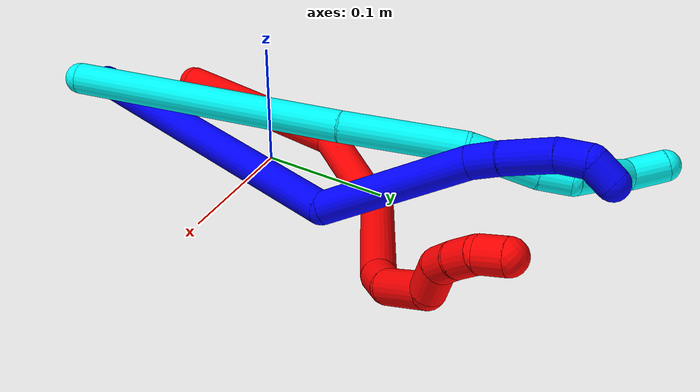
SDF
<sdf version="1.7">
 <world name="default">
  <plugin name="TubeGeneratorPlugin" filename="libtube_generator_plugin.so"/>
  <model name="photoneo_s_sensor">
   <static>1</static>
   <pose>0 0 2 1.57079 1.57079 3.14159</pose>
   <link name="link">
    <inertial><mass>0.1</mass></inertial>
    <sensor name="sensor" type="depth">
     <update_rate>30</update_rate>
     <camera>
      <horizontal_fov>1.22</horizontal_fov>
      <image><width>1920</width><height>1200</height><format>B8G8R8</format></image>
      <clip><near>0.1</near><far>4</far></clip>
      <depth_camera><output>points</output></depth_camera>
     </camera>
     <plugin name="camera_plugin" filename="libgazebo_ros_depth_camera.so">
      <baseline>0.2</baseline>
      <alwaysOn>1</alwaysOn>
      <updateRate>0.0</updateRate>
      <cameraName>camera_ir</cameraName>
      <imageTopicName>/camera/color/image_raw</imageTopicName>
      <cameraInfoTopicName>/camera/color/camera_info</cameraInfoTopicName>
      <depthImageTopicName>/camera/depth/image_raw</depthImageTopicName>
      <depthImageCameraInfoTopicName>/camera/depth/camera_info</depthImageCameraInfoTopicName>
      <pointCloudTopicName>/camera/depth/points</pointCloudTopicName>
      <frameName>fr_optical</frameName>
      <pointCloudCutoff>0.1</pointCloudCutoff>
      <pointCloudCutoffMax>2.0</pointCloudCutoffMax>
      <distortionK1>0</distortionK1>
      <distortionK2>0</distortionK2>
      <distortionK3>0</distortionK3>
      <distortionT1>0</distortionT1>
      <distortionT2>0</distortionT2>
      <CxPrime>0</CxPrime>
      <Cx>0</Cx>
      <Cy>0</Cy>
      <focalLength>0</focalLength>
      <hackBaseline>0</hackBaseline>
     </plugin>
    </sensor>
   </link>
  </model>
  <gravity>0 0 -9.8</gravity>
  <magnetic_field>6e-06 2.3e-05 -4.2e-05</magnetic_field>
  <atmosphere type="adiabatic"/>
  <physics name="default_physics" default="0" type="ode">
   <max_step_size>0.003</max_step_size>
   <real_time_factor>1</real_time_factor>
   <real_time_update_rate>1000</real_time_update_rate>
   <max_contacts>10000</max_contacts>
   <ode>
    <solver>
     <type>quick</type>
     <iters>100</iters>
     <sor>1.3</sor>
     <use_dynamic_moi_rescaling>0</use_dynamic_moi_rescaling>
    </solver>
    <constraints>
     <contact_max_correcting_vel>0</contact_max_correcting_vel>
     <contact_surface_layer>0.001</contact_surface_layer>
     <cfm>0</cfm>
     <erp>0.2</erp>
    </constraints>
   </ode>
  </physics>
  <scene><ambient>0.4 0.4 0.4 1</ambient><background>0.7 0.7 0.7 1</background><shadows>0</shadows></scene>
  <audio><device>default</device></audio>
  <spherical_coordinates>
   <surface_model>EARTH_WGS84</surface_model>
   <latitude_deg>0</latitude_deg>
   <longitude_deg>0</longitude_deg>
   <elevation>0</elevation>
   <heading_deg>0</heading_deg>
  </spherical_coordinates>
  <model name="bin">
   <static>1</static>
   <link name="bottom">
    <collision name="collision-bottom">
     <pose>0 0 -0.01 0 -0 0</pose>
     <geometry><box><size>0.8 0.6 0.02</size></box></geometry>
     <surface>
      <friction><ode><mu>100</mu><mu2>100</mu2></ode></friction>
      <contact><collide_bitmask>65535</collide_bitmask></contact>
     </surface>
    </collision>
   </link>
   <link name="west_wall">
    <collision name="collision-west_wall">
     <pose>-0.41 0 0.1 0 -0 0</pose>
     <geometry><box><size>0.02 0.6 0.2</size></box></geometry>
     <surface>
      <friction><ode><mu>100</mu><mu2>100</mu2></ode></friction>
      <contact><collide_bitmask>65535</collide_bitmask></contact>
     </surface>
    </collision>
   </link>
   <link name="east_wall">
    <collision name="collision-east_wall">
     <pose>0.41 0 0.1 0 -0 0</pose>
     <geometry><box><size>0.02 0.6 0.2</size></box></geometry>
     <surface>
      <friction><ode><mu>100</mu><mu2>100</mu2></ode></friction>
      <contact><collide_bitmask>65535</collide_bitmask></contact>
     </surface>
    </collision>
   </link>
   <link name="south_wall">
    <collision name="collision-south_wall">
     <pose>0 -0.31 0.1 0 -0 0</pose>
     <geometry><box><size>0.8 0.02 0.2</size></box></geometry>
     <surface>
      <friction><ode><mu>100</mu><mu2>100</mu2></ode></friction>
      <contact><collide_bitmask>65535</collide_bitmask></contact>
     </surface>
    </collision>
   </link>
   <link name="north_wall">
    <collision name="collision-north_wall">
     <pose>0 0.31 0.1 0 -0 0</pose>
     <geometry><box><size>0.8 0.02 0.2</size></box></geometry>
     <surface>
      <friction><ode><mu>100</mu><mu2>100</mu2></ode></friction>
      <contact><collide_bitmask>65535</collide_bitmask></contact>
     </surface>
    </collision>
   </link>
  </model>
  <model name="1">
   <static>0</static>
   <link name="1">
    <collision name="collision-cylinder-e_1_1_4">
     <pose>0.024464 0.068773 0.114411 -0.541233 0.181252 -0.050411</pose>
     <geometry><cylinder><radius>0.0125</radius><length>0.271426</length></cylinder></geometry>
     <surface>
      <friction><ode><mu>1.16</mu><mu2>1.16</mu2><slip1>0</slip1><slip2>0</slip2></ode></friction>
      <contact><ode><kp>1e+06</kp><kd>1</kd><max_vel>0</max_vel><min_depth>0.001</min_depth></ode></contact>
     </surface>
    </collision>
    <visual name="visual-cylinder-e_1_1_4">
     <pose>0.024464 0.068773 0.114411 -0.541233 0.181252 -0.050411</pose>
     <geometry><cylinder><radius>0.0125</radius><length>0.271426</length></cylinder></geometry>
     <material><ambient>0 0 1 1</ambient></material>
    </visual>
    <collision name="collision-cylinder-e_2_4_5">
     <pose>0.053403 0.125137 0.286484 0.211963 0.07573 0.00806</pose>
     <geometry><cylinder><radius>0.0125</radius><length>0.118306</length></cylinder></geometry>
     <surface>
      <friction><ode><mu>1.16</mu><mu2>1.16</mu2><slip1>0</slip1><slip2>0</slip2></ode></friction>
      <contact><ode><kp>1e+06</kp><kd>1</kd><max_vel>0</max_vel><min_depth>0.001</min_depth></ode></contact>
     </surface>
    </collision>
    <visual name="visual-cylinder-e_2_4_5">
     <pose>0.053403 0.125137 0.286484 0.211963 0.07573 0.00806</pose>
     <geometry><cylinder><radius>0.0125</radius><length>0.118306</length></cylinder></geometry>
     <material><ambient>0 0 1 1</ambient></material>
    </visual>
    <collision name="collision-cylinder-e_3_5_6">
     <pose>0.060289 0.11285 0.356224 -0.01006 0.197034 -0.000994</pose>
     <geometry><cylinder><radius>0.0125</radius><length>0.024631</length></cylinder></geometry>
     <surface>
      <friction><ode><mu>1.16</mu><mu2>1.16</mu2><slip1>0</slip1><slip2>0</slip2></ode></friction>
      <contact><ode><kp>1e+06</kp><kd>1</kd><max_vel>0</max_vel><min_depth>0.001</min_depth></ode></contact>
     </surface>
    </collision>
    <visual name="visual-cylinder-e_3_5_6">
     <pose>0.060289 0.11285 0.356224 -0.01006 0.197034 -0.000994</pose>
     <geometry><cylinder><radius>0.0125</radius><length>0.024631</length></cylinder></geometry>
     <material><ambient>0 0 1 1</ambient></material>
    </visual>
    <collision name="collision-cylinder-e_4_6_7">
     <pose>0.064533 0.113811 0.388843 -0.040844 0.088904 -0.001817</pose>
     <geometry><cylinder><radius>0.0125</radius><length>0.041282</length></cylinder></geometry>
     <surface>
      <friction><ode><mu>1.16</mu><mu2>1.16</mu2><slip1>0</slip1><slip2>0</slip2></ode></friction>
      <contact><ode><kp>1e+06</kp><kd>1</kd><max_vel>0</max_vel><min_depth>0.001</min_depth></ode></contact>
     </surface>
    </collision>
    <visual name="visual-cylinder-e_4_6_7">
     <pose>0.064533 0.113811 0.388843 -0.040844 0.088904 -0.001817</pose>
     <geometry><cylinder><radius>0.0125</radius><length>0.041282</length></cylinder></geometry>
     <material><ambient>0 0 1 1</ambient></material>
    </visual>
    <collision name="collision-cylinder-e_5_7_8">
     <pose>0.06693 0.117931 0.421053 -0.274079 0.046596 -0.006427</pose>
     <geometry><cylinder><radius>0.0125</radius><length>0.024268</length></cylinder></geometry>
     <surface>
      <friction><ode><mu>1.16</mu><mu2>1.16</mu2><slip1>0</slip1><slip2>0</slip2></ode></friction>
      <contact><ode><kp>1e+06</kp><kd>1</kd><max_vel>0</max_vel><min_depth>0.001</min_depth></ode></contact>
     </surface>
    </collision>
    <visual name="visual-cylinder-e_5_7_8">
     <pose>0.06693 0.117931 0.421053 -0.274079 0.046596 -0.006427</pose>
     <geometry><cylinder><radius>0.0125</radius><length>0.024268</length></cylinder></geometry>
     <material><ambient>0 0 1 1</ambient></material>
    </visual>
    <collision name="collision-cylinder-e_6_8_2">
     <pose>0.063145 0.127977 0.438737 -0.844054 -0.448035 0.203895</pose>
     <geometry><cylinder><radius>0.0125</radius><length>0.020088</length></cylinder></geometry>
     <surface>
      <friction><ode><mu>1.16</mu><mu2>1.16</mu2><slip1>0</slip1><slip2>0</slip2></ode></friction>
      <contact><ode><kp>1e+06</kp><kd>1</kd><max_vel>0</max_vel><min_depth>0.001</min_depth></ode></contact>
     </surface>
    </collision>
    <visual name="visual-cylinder-e_6_8_2">
     <pose>0.063145 0.127977 0.438737 -0.844054 -0.448035 0.203895</pose>
     <geometry><cylinder><radius>0.0125</radius><length>0.020088</length></cylinder></geometry>
     <material><ambient>0 0 1 1</ambient></material>
    </visual>
    <collision name="collision-sphere-2">
     <pose>0.058794 0.134742 0.444752 0 -0 0</pose>
     <geometry><sphere><radius>0.0125</radius></sphere></geometry>
     <surface>
      <friction><ode><mu>1.16</mu><mu2>1.16</mu2><slip1>0</slip1><slip2>0</slip2></ode></friction>
      <contact><ode><kp>1e+06</kp><kd>1</kd><max_vel>0</max_vel><min_depth>0.001</min_depth></ode></contact>
     </surface>
    </collision>
    <visual name="visual-sphere-2">
     <pose>0.058794 0.134742 0.444752 0 -0 0</pose>
     <geometry><sphere><radius>0.0125</radius></sphere></geometry>
     <material><ambient>0 0 1 1</ambient></material>
    </visual>
    <collision name="collision-sphere-4">
     <pose>0.048928 0.137546 0.228821 0 -0 0</pose>
     <geometry><sphere><radius>0.0125</radius></sphere></geometry>
     <surface>
      <friction><ode><mu>1.16</mu><mu2>1.16</mu2><slip1>0</slip1><slip2>0</slip2></ode></friction>
      <contact><ode><kp>1e+06</kp><kd>1</kd><max_vel>0</max_vel><min_depth>0.001</min_depth></ode></contact>
     </surface>
    </collision>
    <visual name="visual-sphere-4">
     <pose>0.048928 0.137546 0.228821 0 -0 0</pose>
     <geometry><sphere><radius>0.0125</radius></sphere></geometry>
     <material><ambient>0 0 1 1</ambient></material>
    </visual>
    <collision name="collision-sphere-1">
     <geometry><sphere><radius>0.0125</radius></sphere></geometry>
     <surface>
      <friction><ode><mu>1.16</mu><mu2>1.16</mu2><slip1>0</slip1><slip2>0</slip2></ode></friction>
      <contact><ode><kp>1e+06</kp><kd>1</kd><max_vel>0</max_vel><min_depth>0.001</min_depth></ode></contact>
     </surface>
    </collision>
    <visual name="visual-sphere-1">
     <geometry><sphere><radius>0.0125</radius></sphere></geometry>
     <material><ambient>0 0 1 1</ambient></material>
    </visual>
    <collision name="collision-sphere-8">
     <pose>0.067496 0.121211 0.432722 0 -0 0</pose>
     <geometry><sphere><radius>0.0125</radius></sphere></geometry>
     <surface>
      <friction><ode><mu>1.16</mu><mu2>1.16</mu2><slip1>0</slip1><slip2>0</slip2></ode></friction>
      <contact><ode><kp>1e+06</kp><kd>1</kd><max_vel>0</max_vel><min_depth>0.001</min_depth></ode></contact>
     </surface>
    </collision>
    <visual name="visual-sphere-8">
     <pose>0.067496 0.121211 0.432722 0 -0 0</pose>
     <geometry><sphere><radius>0.0125</radius></sphere></geometry>
     <material><ambient>0 0 1 1</ambient></material>
    </visual>
    <collision name="collision-sphere-5">
     <pose>0.057878 0.112728 0.344148 0 -0 0</pose>
     <geometry><sphere><radius>0.0125</radius></sphere></geometry>
     <surface>
      <friction><ode><mu>1.16</mu><mu2>1.16</mu2><slip1>0</slip1><slip2>0</slip2></ode></friction>
      <contact><ode><kp>1e+06</kp><kd>1</kd><max_vel>0</max_vel><min_depth>0.001</min_depth></ode></contact>
     </surface>
    </collision>
    <visual name="visual-sphere-5">
     <pose>0.057878 0.112728 0.344148 0 -0 0</pose>
     <geometry><sphere><radius>0.0125</radius></sphere></geometry>
     <material><ambient>0 0 1 1</ambient></material>
    </visual>
    <collision name="collision-sphere-6">
     <pose>0.0627 0.112971 0.3683 0 -0 0</pose>
     <geometry><sphere><radius>0.0125</radius></sphere></geometry>
     <surface>
      <friction><ode><mu>1.16</mu><mu2>1.16</mu2><slip1>0</slip1><slip2>0</slip2></ode></friction>
      <contact><ode><kp>1e+06</kp><kd>1</kd><max_vel>0</max_vel><min_depth>0.001</min_depth></ode></contact>
     </surface>
    </collision>
    <visual name="visual-sphere-6">
     <pose>0.0627 0.112971 0.3683 0 -0 0</pose>
     <geometry><sphere><radius>0.0125</radius></sphere></geometry>
     <material><ambient>0 0 1 1</ambient></material>
    </visual>
    <collision name="collision-sphere-7">
     <pose>0.066365 0.11465 0.409385 0 -0 0</pose>
     <geometry><sphere><radius>0.0125</radius></sphere></geometry>
     <surface>
      <friction><ode><mu>1.16</mu><mu2>1.16</mu2><slip1>0</slip1><slip2>0</slip2></ode></friction>
      <contact><ode><kp>1e+06</kp><kd>1</kd><max_vel>0</max_vel><min_depth>0.001</min_depth></ode></contact>
     </surface>
    </collision>
    <visual name="visual-sphere-7">
     <pose>0.066365 0.11465 0.409385 0 -0 0</pose>
     <geometry><sphere><radius>0.0125</radius></sphere></geometry>
     <material><ambient>0 0 1 1</ambient></material>
    </visual>
    <inertial>
     <pose>0.039999 0.092764 0.217609 0 -0 0</pose>
     <mass>0.5</mass>
     <inertia>
      <ixx>0.001725</ixx>
      <ixy>0</ixy>
      <ixz>0</ixz>
      <iyy>0.001524</iyy>
      <iyz>0</iyz>
      <izz>-0.001101</izz>
     </inertia>
    </inertial>
   </link>
   <pose>-0.011585 -0.172894 0.012377 -1.16117 -0.833419 -0.068517</pose>
  </model>
  <model name="2">
   <static>0</static>
   <link name="2">
    <collision name="collision-cylinder-e_1_1_4">
     <pose>0.023573 0.06665 0.034291 -1.09562 0.304707 -0.186808</pose>
     <geometry><cylinder><radius>0.0125</radius><length>0.157146</length></cylinder></geometry>
     <surface>
      <friction><ode><mu>1.16</mu><mu2>1.16</mu2><slip1>0</slip1><slip2>0</slip2></ode></friction>
      <contact><ode><kp>1e+06</kp><kd>1</kd><max_vel>0</max_vel><min_depth>0.001</min_depth></ode></contact>
     </surface>
    </collision>
    <visual name="visual-cylinder-e_1_1_4">
     <pose>0.023573 0.06665 0.034291 -1.09562 0.304707 -0.186808</pose>
     <geometry><cylinder><radius>0.0125</radius><length>0.157146</length></cylinder></geometry>
     <material><ambient>1 0 0 1</ambient></material>
    </visual>
    <collision name="collision-cylinder-e_2_4_5">
     <pose>0.064546 0.170943 0.068835 -1.56406 0.432969 -0.430152</pose>
     <geometry><cylinder><radius>0.0125</radius><length>0.082942</length></cylinder></geometry>
     <surface>
      <friction><ode><mu>1.16</mu><mu2>1.16</mu2><slip1>0</slip1><slip2>0</slip2></ode></friction>
      <contact><ode><kp>1e+06</kp><kd>1</kd><max_vel>0</max_vel><min_depth>0.001</min_depth></ode></contact>
     </surface>
    </collision>
    <visual name="visual-cylinder-e_2_4_5">
     <pose>0.064546 0.170943 0.068835 -1.56406 0.432969 -0.430152</pose>
     <geometry><cylinder><radius>0.0125</radius><length>0.082942</length></cylinder></geometry>
     <material><ambient>1 0 0 1</ambient></material>
    </visual>
    <collision name="collision-cylinder-e_3_5_6">
     <pose>0.12493 0.236404 0.063549 -1.76735 0.987516 -1.16111</pose>
     <geometry><cylinder><radius>0.0125</radius><length>0.102998</length></cylinder></geometry>
     <surface>
      <friction><ode><mu>1.16</mu><mu2>1.16</mu2><slip1>0</slip1><slip2>0</slip2></ode></friction>
      <contact><ode><kp>1e+06</kp><kd>1</kd><max_vel>0</max_vel><min_depth>0.001</min_depth></ode></contact>
     </surface>
    </collision>
    <visual name="visual-cylinder-e_3_5_6">
     <pose>0.12493 0.236404 0.063549 -1.76735 0.987516 -1.16111</pose>
     <geometry><cylinder><radius>0.0125</radius><length>0.102998</length></cylinder></geometry>
     <material><ambient>1 0 0 1</ambient></material>
    </visual>
    <collision name="collision-cylinder-e_4_6_7">
     <pose>0.17843 0.271211 0.06059 -1.21707 0.954367 -0.691538</pose>
     <geometry><cylinder><radius>0.0125</radius><length>0.025775</length></cylinder></geometry>
     <surface>
      <friction><ode><mu>1.16</mu><mu2>1.16</mu2><slip1>0</slip1><slip2>0</slip2></ode></friction>
      <contact><ode><kp>1e+06</kp><kd>1</kd><max_vel>0</max_vel><min_depth>0.001</min_depth></ode></contact>
     </surface>
    </collision>
    <visual name="visual-cylinder-e_4_6_7">
     <pose>0.17843 0.271211 0.06059 -1.21707 0.954367 -0.691538</pose>
     <geometry><cylinder><radius>0.0125</radius><length>0.025775</length></cylinder></geometry>
     <material><ambient>1 0 0 1</ambient></material>
    </visual>
    <collision name="collision-cylinder-e_5_7_8">
     <pose>0.20388 0.290439 0.075742 -0.772004 0.705235 -0.2969</pose>
     <geometry><cylinder><radius>0.0125</radius><length>0.046079</length></cylinder></geometry>
     <surface>
      <friction><ode><mu>1.16</mu><mu2>1.16</mu2><slip1>0</slip1><slip2>0</slip2></ode></friction>
      <contact><ode><kp>1e+06</kp><kd>1</kd><max_vel>0</max_vel><min_depth>0.001</min_depth></ode></contact>
     </surface>
    </collision>
    <visual name="visual-cylinder-e_5_7_8">
     <pose>0.20388 0.290439 0.075742 -0.772004 0.705235 -0.2969</pose>
     <geometry><cylinder><radius>0.0125</radius><length>0.046079</length></cylinder></geometry>
     <material><ambient>1 0 0 1</ambient></material>
    </visual>
    <collision name="collision-cylinder-e_6_8_9">
     <pose>0.22641 0.300228 0.09769 0.255378 0.664655 0.088562</pose>
     <geometry><cylinder><radius>0.0125</radius><length>0.024628</length></cylinder></geometry>
     <surface>
      <friction><ode><mu>1.16</mu><mu2>1.16</mu2><slip1>0</slip1><slip2>0</slip2></ode></friction>
      <contact><ode><kp>1e+06</kp><kd>1</kd><max_vel>0</max_vel><min_depth>0.001</min_depth></ode></contact>
     </surface>
    </collision>
    <visual name="visual-cylinder-e_6_8_9">
     <pose>0.22641 0.300228 0.09769 0.255378 0.664655 0.088562</pose>
     <geometry><cylinder><radius>0.0125</radius><length>0.024628</length></cylinder></geometry>
     <material><ambient>1 0 0 1</ambient></material>
    </visual>
    <collision name="collision-cylinder-e_7_9_10">
     <pose>0.240902 0.301072 0.113752 -0.457728 0.746824 -0.182029</pose>
     <geometry><cylinder><radius>0.0125</radius><length>0.020306</length></cylinder></geometry>
     <surface>
      <friction><ode><mu>1.16</mu><mu2>1.16</mu2><slip1>0</slip1><slip2>0</slip2></ode></friction>
      <contact><ode><kp>1e+06</kp><kd>1</kd><max_vel>0</max_vel><min_depth>0.001</min_depth></ode></contact>
     </surface>
    </collision>
    <visual name="visual-cylinder-e_7_9_10">
     <pose>0.240902 0.301072 0.113752 -0.457728 0.746824 -0.182029</pose>
     <geometry><cylinder><radius>0.0125</radius><length>0.020306</length></cylinder></geometry>
     <material><ambient>1 0 0 1</ambient></material>
    </visual>
    <collision name="collision-cylinder-e_8_10_11">
     <pose>0.253356 0.308495 0.127727 -0.515397 0.585548 -0.158559</pose>
     <geometry><cylinder><radius>0.0125</radius><length>0.020108</length></cylinder></geometry>
     <surface>
      <friction><ode><mu>1.16</mu><mu2>1.16</mu2><slip1>0</slip1><slip2>0</slip2></ode></friction>
      <contact><ode><kp>1e+06</kp><kd>1</kd><max_vel>0</max_vel><min_depth>0.001</min_depth></ode></contact>
     </surface>
    </collision>
    <visual name="visual-cylinder-e_8_10_11">
     <pose>0.253356 0.308495 0.127727 -0.515397 0.585548 -0.158559</pose>
     <geometry><cylinder><radius>0.0125</radius><length>0.020108</length></cylinder></geometry>
     <material><ambient>1 0 0 1</ambient></material>
    </visual>
    <collision name="collision-cylinder-e_9_11_2">
     <pose>0.260778 0.319636 0.141912 -0.793812 0.187507 -0.078784</pose>
     <geometry><cylinder><radius>0.0125</radius><length>0.020017</length></cylinder></geometry>
     <surface>
      <friction><ode><mu>1.16</mu><mu2>1.16</mu2><slip1>0</slip1><slip2>0</slip2></ode></friction>
      <contact><ode><kp>1e+06</kp><kd>1</kd><max_vel>0</max_vel><min_depth>0.001</min_depth></ode></contact>
     </surface>
    </collision>
    <visual name="visual-cylinder-e_9_11_2">
     <pose>0.260778 0.319636 0.141912 -0.793812 0.187507 -0.078784</pose>
     <geometry><cylinder><radius>0.0125</radius><length>0.020017</length></cylinder></geometry>
     <material><ambient>1 0 0 1</ambient></material>
    </visual>
    <collision name="collision-sphere-2">
     <pose>0.262643 0.326647 0.148806 0 -0 0</pose>
     <geometry><sphere><radius>0.0125</radius></sphere></geometry>
     <surface>
      <friction><ode><mu>1.16</mu><mu2>1.16</mu2><slip1>0</slip1><slip2>0</slip2></ode></friction>
      <contact><ode><kp>1e+06</kp><kd>1</kd><max_vel>0</max_vel><min_depth>0.001</min_depth></ode></contact>
     </surface>
    </collision>
    <visual name="visual-sphere-2">
     <pose>0.262643 0.326647 0.148806 0 -0 0</pose>
     <geometry><sphere><radius>0.0125</radius></sphere></geometry>
     <material><ambient>1 0 0 1</ambient></material>
    </visual>
    <collision name="collision-sphere-11">
     <pose>0.258912 0.312625 0.135018 0 -0 0</pose>
     <geometry><sphere><radius>0.0125</radius></sphere></geometry>
     <surface>
      <friction><ode><mu>1.16</mu><mu2>1.16</mu2><slip1>0</slip1><slip2>0</slip2></ode></friction>
      <contact><ode><kp>1e+06</kp><kd>1</kd><max_vel>0</max_vel><min_depth>0.001</min_depth></ode></contact>
     </surface>
    </collision>
    <visual name="visual-sphere-11">
     <pose>0.258912 0.312625 0.135018 0 -0 0</pose>
     <geometry><sphere><radius>0.0125</radius></sphere></geometry>
     <material><ambient>1 0 0 1</ambient></material>
    </visual>
    <collision name="collision-sphere-10">
     <pose>0.247799 0.304365 0.120436 0 -0 0</pose>
     <geometry><sphere><radius>0.0125</radius></sphere></geometry>
     <surface>
      <friction><ode><mu>1.16</mu><mu2>1.16</mu2><slip1>0</slip1><slip2>0</slip2></ode></friction>
      <contact><ode><kp>1e+06</kp><kd>1</kd><max_vel>0</max_vel><min_depth>0.001</min_depth></ode></contact>
     </surface>
    </collision>
    <visual name="visual-sphere-10">
     <pose>0.247799 0.304365 0.120436 0 -0 0</pose>
     <geometry><sphere><radius>0.0125</radius></sphere></geometry>
     <material><ambient>1 0 0 1</ambient></material>
    </visual>
    <collision name="collision-sphere-9">
     <pose>0.234005 0.29778 0.107069 0 -0 0</pose>
     <geometry><sphere><radius>0.0125</radius></sphere></geometry>
     <surface>
      <friction><ode><mu>1.16</mu><mu2>1.16</mu2><slip1>0</slip1><slip2>0</slip2></ode></friction>
      <contact><ode><kp>1e+06</kp><kd>1</kd><max_vel>0</max_vel><min_depth>0.001</min_depth></ode></contact>
     </surface>
    </collision>
    <visual name="visual-sphere-9">
     <pose>0.234005 0.29778 0.107069 0 -0 0</pose>
     <geometry><sphere><radius>0.0125</radius></sphere></geometry>
     <material><ambient>1 0 0 1</ambient></material>
    </visual>
    <collision name="collision-sphere-4">
     <pose>0.047146 0.133299 0.068581 0 -0 0</pose>
     <geometry><sphere><radius>0.0125</radius></sphere></geometry>
     <surface>
      <friction><ode><mu>1.16</mu><mu2>1.16</mu2><slip1>0</slip1><slip2>0</slip2></ode></friction>
      <contact><ode><kp>1e+06</kp><kd>1</kd><max_vel>0</max_vel><min_depth>0.001</min_depth></ode></contact>
     </surface>
    </collision>
    <visual name="visual-sphere-4">
     <pose>0.047146 0.133299 0.068581 0 -0 0</pose>
     <geometry><sphere><radius>0.0125</radius></sphere></geometry>
     <material><ambient>1 0 0 1</ambient></material>
    </visual>
    <collision name="collision-sphere-1">
     <geometry><sphere><radius>0.0125</radius></sphere></geometry>
     <surface>
      <friction><ode><mu>1.16</mu><mu2>1.16</mu2><slip1>0</slip1><slip2>0</slip2></ode></friction>
      <contact><ode><kp>1e+06</kp><kd>1</kd><max_vel>0</max_vel><min_depth>0.001</min_depth></ode></contact>
     </surface>
    </collision>
    <visual name="visual-sphere-1">
     <geometry><sphere><radius>0.0125</radius></sphere></geometry>
     <material><ambient>1 0 0 1</ambient></material>
    </visual>
    <collision name="collision-sphere-8">
     <pose>0.218815 0.302677 0.088312 0 -0 0</pose>
     <geometry><sphere><radius>0.0125</radius></sphere></geometry>
     <surface>
      <friction><ode><mu>1.16</mu><mu2>1.16</mu2><slip1>0</slip1><slip2>0</slip2></ode></friction>
      <contact><ode><kp>1e+06</kp><kd>1</kd><max_vel>0</max_vel><min_depth>0.001</min_depth></ode></contact>
     </surface>
    </collision>
    <visual name="visual-sphere-8">
     <pose>0.218815 0.302677 0.088312 0 -0 0</pose>
     <geometry><sphere><radius>0.0125</radius></sphere></geometry>
     <material><ambient>1 0 0 1</ambient></material>
    </visual>
    <collision name="collision-sphere-5">
     <pose>0.081946 0.208586 0.069088 0 -0 0</pose>
     <geometry><sphere><radius>0.0125</radius></sphere></geometry>
     <surface>
      <friction><ode><mu>1.16</mu><mu2>1.16</mu2><slip1>0</slip1><slip2>0</slip2></ode></friction>
      <contact><ode><kp>1e+06</kp><kd>1</kd><max_vel>0</max_vel><min_depth>0.001</min_depth></ode></contact>
     </surface>
    </collision>
    <visual name="visual-sphere-5">
     <pose>0.081946 0.208586 0.069088 0 -0 0</pose>
     <geometry><sphere><radius>0.0125</radius></sphere></geometry>
     <material><ambient>1 0 0 1</ambient></material>
    </visual>
    <collision name="collision-sphere-6">
     <pose>0.167914 0.264222 0.05801 0 -0 0</pose>
     <geometry><sphere><radius>0.0125</radius></sphere></geometry>
     <surface>
      <friction><ode><mu>1.16</mu><mu2>1.16</mu2><slip1>0</slip1><slip2>0</slip2></ode></friction>
      <contact><ode><kp>1e+06</kp><kd>1</kd><max_vel>0</max_vel><min_depth>0.001</min_depth></ode></contact>
     </surface>
    </collision>
    <visual name="visual-sphere-6">
     <pose>0.167914 0.264222 0.05801 0 -0 0</pose>
     <geometry><sphere><radius>0.0125</radius></sphere></geometry>
     <material><ambient>1 0 0 1</ambient></material>
    </visual>
    <collision name="collision-sphere-7">
     <pose>0.188946 0.278201 0.063171 0 -0 0</pose>
     <geometry><sphere><radius>0.0125</radius></sphere></geometry>
     <surface>
      <friction><ode><mu>1.16</mu><mu2>1.16</mu2><slip1>0</slip1><slip2>0</slip2></ode></friction>
      <contact><ode><kp>1e+06</kp><kd>1</kd><max_vel>0</max_vel><min_depth>0.001</min_depth></ode></contact>
     </surface>
    </collision>
    <visual name="visual-sphere-7">
     <pose>0.188946 0.278201 0.063171 0 -0 0</pose>
     <geometry><sphere><radius>0.0125</radius></sphere></geometry>
     <material><ambient>1 0 0 1</ambient></material>
    </visual>
    <inertial>
     <pose>0.113403 0.190968 0.06564 0 -0 0</pose>
     <mass>0.5</mass>
     <inertia>
      <ixx>0.000277</ixx>
      <ixy>0</ixy>
      <ixz>0</ixz>
      <iyy>0.00015</iyy>
      <iyz>0</iyz>
      <izz>-0.000585</izz>
     </inertia>
    </inertial>
   </link>
   <pose>-0.047474 -0.107478 0.012318 -0.61577 -0.65569 0.123358</pose>
  </model>
  <model name="3">
   <static>0</static>
   <link name="3">
    <collision name="collision-cylinder-e_1_1_4">
     <pose>-0.085914 0.034157 -0.067005 -2.67016 -0.851741 2.16772</pose>
     <geometry><cylinder><radius>0.0125</radius><length>0.228365</length></cylinder></geometry>
     <surface>
      <friction><ode><mu>1.16</mu><mu2>1.16</mu2><slip1>0</slip1><slip2>0</slip2></ode></friction>
      <contact><ode><kp>1e+06</kp><kd>1</kd><max_vel>0</max_vel><min_depth>0.001</min_depth></ode></contact>
     </surface>
    </collision>
    <visual name="visual-cylinder-e_1_1_4">
     <pose>-0.085914 0.034157 -0.067005 -2.67016 -0.851741 2.16772</pose>
     <geometry><cylinder><radius>0.0125</radius><length>0.228365</length></cylinder></geometry>
     <material><ambient>0.003922 1 0.996078 1</ambient></material>
    </visual>
    <collision name="collision-cylinder-e_2_4_5">
     <pose>-0.206488 0.087996 -0.163069 -2.54625 -0.779134 1.8581</pose>
     <geometry><cylinder><radius>0.0125</radius><length>0.098653</length></cylinder></geometry>
     <surface>
      <friction><ode><mu>1.16</mu><mu2>1.16</mu2><slip1>0</slip1><slip2>0</slip2></ode></friction>
      <contact><ode><kp>1e+06</kp><kd>1</kd><max_vel>0</max_vel><min_depth>0.001</min_depth></ode></contact>
     </surface>
    </collision>
    <visual name="visual-cylinder-e_2_4_5">
     <pose>-0.206488 0.087996 -0.163069 -2.54625 -0.779134 1.8581</pose>
     <geometry><cylinder><radius>0.0125</radius><length>0.098653</length></cylinder></geometry>
     <material><ambient>0.003922 1 0.996078 1</ambient></material>
    </visual>
    <collision name="collision-cylinder-e_3_5_6">
     <pose>-0.262015 0.123873 -0.203575 -2.18609 -0.810811 1.38427</pose>
     <geometry><cylinder><radius>0.0125</radius><length>0.057575</length></cylinder></geometry>
     <surface>
      <friction><ode><mu>1.16</mu><mu2>1.16</mu2><slip1>0</slip1><slip2>0</slip2></ode></friction>
      <contact><ode><kp>1e+06</kp><kd>1</kd><max_vel>0</max_vel><min_depth>0.001</min_depth></ode></contact>
     </surface>
    </collision>
    <visual name="visual-cylinder-e_3_5_6">
     <pose>-0.262015 0.123873 -0.203575 -2.18609 -0.810811 1.38427</pose>
     <geometry><cylinder><radius>0.0125</radius><length>0.057575</length></cylinder></geometry>
     <material><ambient>0.003922 1 0.996078 1</ambient></material>
    </visual>
    <collision name="collision-cylinder-e_4_6_7">
     <pose>-0.291416 0.146162 -0.22208 -2.42943 -0.741192 1.61449</pose>
     <geometry><cylinder><radius>0.0125</radius><length>0.025283</length></cylinder></geometry>
     <surface>
      <friction><ode><mu>1.16</mu><mu2>1.16</mu2><slip1>0</slip1><slip2>0</slip2></ode></friction>
      <contact><ode><kp>1e+06</kp><kd>1</kd><max_vel>0</max_vel><min_depth>0.001</min_depth></ode></contact>
     </surface>
    </collision>
    <visual name="visual-cylinder-e_4_6_7">
     <pose>-0.291416 0.146162 -0.22208 -2.42943 -0.741192 1.61449</pose>
     <geometry><cylinder><radius>0.0125</radius><length>0.025283</length></cylinder></geometry>
     <material><ambient>0.003922 1 0.996078 1</ambient></material>
    </visual>
    <collision name="collision-cylinder-e_5_7_8">
     <pose>-0.301433 0.161356 -0.235441 -2.17645 -0.13305 0.252984</pose>
     <geometry><cylinder><radius>0.0125</radius><length>0.022336</length></cylinder></geometry>
     <surface>
      <friction><ode><mu>1.16</mu><mu2>1.16</mu2><slip1>0</slip1><slip2>0</slip2></ode></friction>
      <contact><ode><kp>1e+06</kp><kd>1</kd><max_vel>0</max_vel><min_depth>0.001</min_depth></ode></contact>
     </surface>
    </collision>
    <visual name="visual-cylinder-e_5_7_8">
     <pose>-0.301433 0.161356 -0.235441 -2.17645 -0.13305 0.252984</pose>
     <geometry><cylinder><radius>0.0125</radius><length>0.022336</length></cylinder></geometry>
     <material><ambient>0.003922 1 0.996078 1</ambient></material>
    </visual>
    <collision name="collision-cylinder-e_6_8_9">
     <pose>-0.30331 0.18743 -0.246829 -1.86197 -0.02231 0.029975</pose>
     <geometry><cylinder><radius>0.0125</radius><length>0.035447</length></cylinder></geometry>
     <surface>
      <friction><ode><mu>1.16</mu><mu2>1.16</mu2><slip1>0</slip1><slip2>0</slip2></ode></friction>
      <contact><ode><kp>1e+06</kp><kd>1</kd><max_vel>0</max_vel><min_depth>0.001</min_depth></ode></contact>
     </surface>
    </collision>
    <visual name="visual-cylinder-e_6_8_9">
     <pose>-0.30331 0.18743 -0.246829 -1.86197 -0.02231 0.029975</pose>
     <geometry><cylinder><radius>0.0125</radius><length>0.035447</length></cylinder></geometry>
     <material><ambient>0.003922 1 0.996078 1</ambient></material>
    </visual>
    <collision name="collision-cylinder-e_7_9_2">
     <pose>-0.307884 0.214123 -0.264145 -2.47 -0.2614 0.720402</pose>
     <geometry><cylinder><radius>0.0125</radius><length>0.032342</length></cylinder></geometry>
     <surface>
      <friction><ode><mu>1.16</mu><mu2>1.16</mu2><slip1>0</slip1><slip2>0</slip2></ode></friction>
      <contact><ode><kp>1e+06</kp><kd>1</kd><max_vel>0</max_vel><min_depth>0.001</min_depth></ode></contact>
     </surface>
    </collision>
    <visual name="visual-cylinder-e_7_9_2">
     <pose>-0.307884 0.214123 -0.264145 -2.47 -0.2614 0.720402</pose>
     <geometry><cylinder><radius>0.0125</radius><length>0.032342</length></cylinder></geometry>
     <material><ambient>0.003922 1 0.996078 1</ambient></material>
    </visual>
    <collision name="collision-sphere-2">
     <pose>-0.312063 0.223843 -0.276374 0 -0 0</pose>
     <geometry><sphere><radius>0.0125</radius></sphere></geometry>
     <surface>
      <friction><ode><mu>1.16</mu><mu2>1.16</mu2><slip1>0</slip1><slip2>0</slip2></ode></friction>
      <contact><ode><kp>1e+06</kp><kd>1</kd><max_vel>0</max_vel><min_depth>0.001</min_depth></ode></contact>
     </surface>
    </collision>
    <visual name="visual-sphere-2">
     <pose>-0.312063 0.223843 -0.276374 0 -0 0</pose>
     <geometry><sphere><radius>0.0125</radius></sphere></geometry>
     <material><ambient>0.003922 1 0.996078 1</ambient></material>
    </visual>
    <collision name="collision-sphere-9">
     <pose>-0.303705 0.204403 -0.251916 0 -0 0</pose>
     <geometry><sphere><radius>0.0125</radius></sphere></geometry>
     <surface>
      <friction><ode><mu>1.16</mu><mu2>1.16</mu2><slip1>0</slip1><slip2>0</slip2></ode></friction>
      <contact><ode><kp>1e+06</kp><kd>1</kd><max_vel>0</max_vel><min_depth>0.001</min_depth></ode></contact>
     </surface>
    </collision>
    <visual name="visual-sphere-9">
     <pose>-0.303705 0.204403 -0.251916 0 -0 0</pose>
     <geometry><sphere><radius>0.0125</radius></sphere></geometry>
     <material><ambient>0.003922 1 0.996078 1</ambient></material>
    </visual>
    <collision name="collision-sphere-4">
     <pose>-0.171828 0.068314 -0.13401 0 -0 0</pose>
     <geometry><sphere><radius>0.0125</radius></sphere></geometry>
     <surface>
      <friction><ode><mu>1.16</mu><mu2>1.16</mu2><slip1>0</slip1><slip2>0</slip2></ode></friction>
      <contact><ode><kp>1e+06</kp><kd>1</kd><max_vel>0</max_vel><min_depth>0.001</min_depth></ode></contact>
     </surface>
    </collision>
    <visual name="visual-sphere-4">
     <pose>-0.171828 0.068314 -0.13401 0 -0 0</pose>
     <geometry><sphere><radius>0.0125</radius></sphere></geometry>
     <material><ambient>0.003922 1 0.996078 1</ambient></material>
    </visual>
    <collision name="collision-sphere-1">
     <geometry><sphere><radius>0.0125</radius></sphere></geometry>
     <surface>
      <friction><ode><mu>1.16</mu><mu2>1.16</mu2><slip1>0</slip1><slip2>0</slip2></ode></friction>
      <contact><ode><kp>1e+06</kp><kd>1</kd><max_vel>0</max_vel><min_depth>0.001</min_depth></ode></contact>
     </surface>
    </collision>
    <visual name="visual-sphere-1">
     <geometry><sphere><radius>0.0125</radius></sphere></geometry>
     <material><ambient>0.003922 1 0.996078 1</ambient></material>
    </visual>
    <collision name="collision-sphere-8">
     <pose>-0.302914 0.170457 -0.241743 0 -0 0</pose>
     <geometry><sphere><radius>0.0125</radius></sphere></geometry>
     <surface>
      <friction><ode><mu>1.16</mu><mu2>1.16</mu2><slip1>0</slip1><slip2>0</slip2></ode></friction>
      <contact><ode><kp>1e+06</kp><kd>1</kd><max_vel>0</max_vel><min_depth>0.001</min_depth></ode></contact>
     </surface>
    </collision>
    <visual name="visual-sphere-8">
     <pose>-0.302914 0.170457 -0.241743 0 -0 0</pose>
     <geometry><sphere><radius>0.0125</radius></sphere></geometry>
     <material><ambient>0.003922 1 0.996078 1</ambient></material>
    </visual>
    <collision name="collision-sphere-5">
     <pose>-0.241148 0.107679 -0.192128 0 -0 0</pose>
     <geometry><sphere><radius>0.0125</radius></sphere></geometry>
     <surface>
      <friction><ode><mu>1.16</mu><mu2>1.16</mu2><slip1>0</slip1><slip2>0</slip2></ode></friction>
      <contact><ode><kp>1e+06</kp><kd>1</kd><max_vel>0</max_vel><min_depth>0.001</min_depth></ode></contact>
     </surface>
    </collision>
    <visual name="visual-sphere-5">
     <pose>-0.241148 0.107679 -0.192128 0 -0 0</pose>
     <geometry><sphere><radius>0.0125</radius></sphere></geometry>
     <material><ambient>0.003922 1 0.996078 1</ambient></material>
    </visual>
    <collision name="collision-sphere-6">
     <pose>-0.282881 0.140068 -0.215022 0 -0 0</pose>
     <geometry><sphere><radius>0.0125</radius></sphere></geometry>
     <surface>
      <friction><ode><mu>1.16</mu><mu2>1.16</mu2><slip1>0</slip1><slip2>0</slip2></ode></friction>
      <contact><ode><kp>1e+06</kp><kd>1</kd><max_vel>0</max_vel><min_depth>0.001</min_depth></ode></contact>
     </surface>
    </collision>
    <visual name="visual-sphere-6">
     <pose>-0.282881 0.140068 -0.215022 0 -0 0</pose>
     <geometry><sphere><radius>0.0125</radius></sphere></geometry>
     <material><ambient>0.003922 1 0.996078 1</ambient></material>
    </visual>
    <collision name="collision-sphere-7">
     <pose>-0.299951 0.152256 -0.229139 0 -0 0</pose>
     <geometry><sphere><radius>0.0125</radius></sphere></geometry>
     <surface>
      <friction><ode><mu>1.16</mu><mu2>1.16</mu2><slip1>0</slip1><slip2>0</slip2></ode></friction>
      <contact><ode><kp>1e+06</kp><kd>1</kd><max_vel>0</max_vel><min_depth>0.001</min_depth></ode></contact>
     </surface>
    </collision>
    <visual name="visual-sphere-7">
     <pose>-0.299951 0.152256 -0.229139 0 -0 0</pose>
     <geometry><sphere><radius>0.0125</radius></sphere></geometry>
     <material><ambient>0.003922 1 0.996078 1</ambient></material>
    </visual>
    <inertial>
     <pose>-0.179771 0.088963 -0.142551 0 -0 0</pose>
     <mass>0.5</mass>
     <inertia>
      <ixx>0.00022</ixx>
      <ixy>0</ixy>
      <ixz>0</ixz>
      <iyy>0.001479</iyy>
      <iyz>0</iyz>
      <izz>0.000454</izz>
     </inertia>
    </inertial>
   </link>
   <pose>0.028977 -0.164395 0.039134 -2.4395 -0.285472 -2.06825</pose>
  </model>
 </world>
</sdf>
